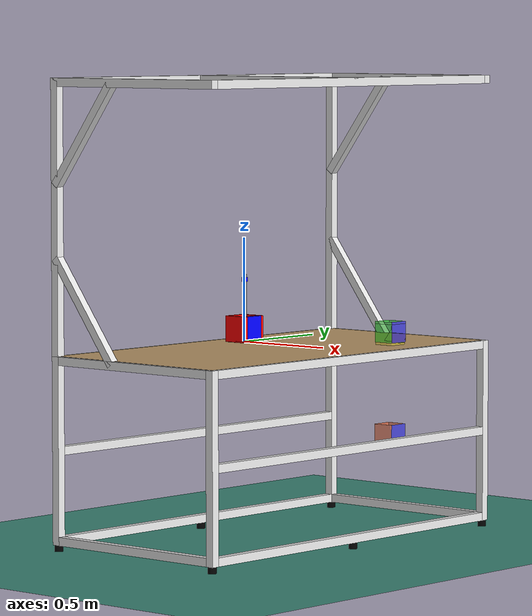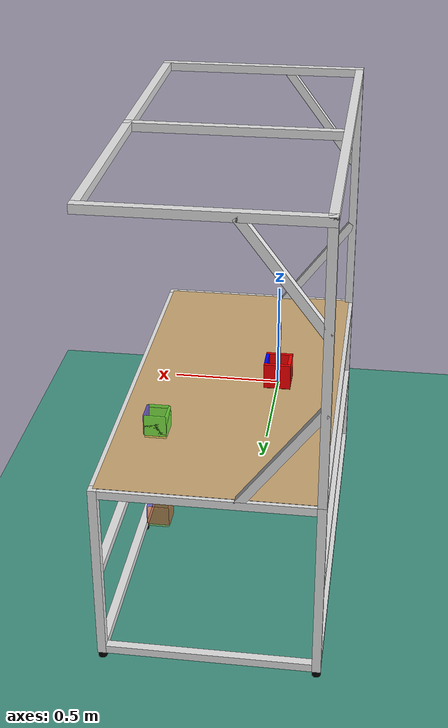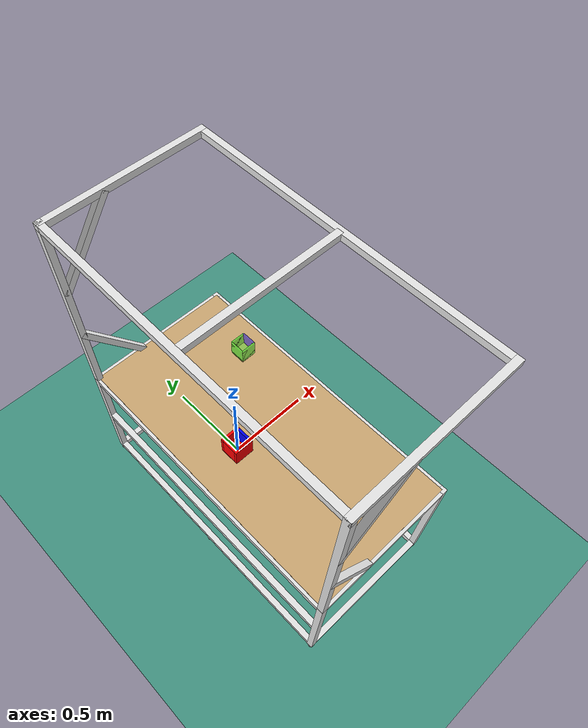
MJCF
<mujoco model="base_surrounding">
  <compiler angle="radian" discardvisual="false" />
  <option collision="all" cone="elliptic" gravity="0 0 -9.81" impratio="3" solver="Newton" timestep="0.002" tolerance="1e-10" />
  <size nconmax="2000" njmax="2000" />
  <asset>
    <texture builtin="gradient" height="32" rgb1="0.26 0.58 0.51" rgb2="0.26 0.58 0.51" type="skybox" width="32" />
  </asset>
  <visual>
    <map zfar="1000" znear="0.001" />
  </visual>
  <worldbody>
    <light castshadow="true" cutoff="100" diffuse="1 1 1" dir="-0 0 -1.3" directional="true" exponent="1" pos="0 0 1.3" specular=".1 .1 .1" />
    <body name="ground" pos="0 0 -0.94">
      <geom name="ground:geom1" rgba="0.26 0.58 0.51 1" size="0 0 1" type="plane" />
    </body>
    <body name="target_pos" pos="0.5 0.5 0.0">
      <site type="box" pos="0 0 0" rgba="0 1 0 0.3" size="0.05 0.05 0.01" />
      <site pos="0.05 0 0.0485" size="0.005 0.05 0.045" rgba="0 0 1 0.5" type="box"/>
      <site pos="0 0.05 0.0485" size="0.05 0.005 0.045" rgba="0 1 0 0.5" type="box"/>
      <site pos="-0.05 0 0.0485" size="0.005 0.05 0.045" rgba="0 1 0 0.5" type="box"/>
      <site pos="0 -0.05 0.0485" size="0.05 0.005 0.045" rgba="0 1 0 0.5" type="box"/>
    </body>

    <body name="replan_target_pos" pos="0.5 0.5 -0.01">
      <site type="box" pos="0 0 0" rgba="1 1 0 0.3" size="0.05 0.05 0.01" />
      <site pos="0.05 0 0.0485" size="0.005 0.05 0.045" rgba="0 0 1 0.5" type="box"/>
      <site pos="0 0.05 0.0485" size="0.05 0.005 0.045" rgba="0 1 0 0.5" type="box"/>
      <site pos="-0.05 0 0.0485" size="0.005 0.05 0.045" rgba="0 1 0 0.5" type="box"/>
      <site pos="0 -0.05 0.0485" size="0.05 0.005 0.045" rgba="0 1 0 0.5" type="box"/>
    </body>

    <body name="mocap_box" pos="0.5 0.5 -0.5">
      <site type="box" pos="0 0 0" rgba="1 1 0 0.3" size="0.05 0.05 0.01" />
      <site pos="0.05 0 0.0485" size="0.005 0.05 0.045" rgba="0 0 1 0.5" type="box"/>
      <site pos="0 0.05 0.0485" size="0.05 0.005 0.045" rgba="1 .3 0 0.5" type="box"/>
      <site pos="-0.05 0 0.0485" size="0.005 0.05 0.045" rgba="1 .3 0 0.5" type="box"/>
      <site pos="0 -0.05 0.0485" size="0.05 0.005 0.045" rgba="1 .3 0 0.5" type="box"/>
    </body>

  </worldbody>

 <contact>
 </contact>

  <include file="kit_lab_surrounding.xml" />
  <include file="push_box.xml" />
  <include file="finger.xml" />
</mujoco>

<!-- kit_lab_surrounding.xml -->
<mujoco model="PandaFrame">
    <worldbody>
        <body name="table_plane" pos="0.2 0 -0.02">
            <geom type="box" size="0.49 0.98 0.001" rgba="0.8 0.655 0.45 1" solimp="0.999 0.999 0.001"
                  solref="0.002 1"/>

            <body name="front_upper" pos="0.49 0 -0.02">
            <geom type="box" size="0.02 0.96 0.02" rgba=".9 .9 .9 1"/>
            </body>
            <body name="front_mid" pos="0.49 0 -0.445">
            <geom type="box" size="0.02 0.96 0.02" rgba=".9 .9 .9 1"/>
            </body>
            <body name="front_lower" pos="0.49 0 -0.87">
            <geom type="box" size="0.02 0.96 0.02" rgba=".9 .9 .9 1"/>
            </body>

            <body name="back_upper" pos="-0.49 0 -0.02">
            <geom type="box" size="0.02 0.96 0.02" rgba=".9 .9 .9 1"/>
            </body>
            <body name="back_mid" pos="-0.49 0 -0.445">
            <geom type="box" size="0.02 0.96 0.02" rgba=".9 .9 .9 1"/>
            </body>
            <body name="back_lower" pos="-0.49 0 -0.87">
            <geom type="box" size="0.02 0.96 0.02" rgba=".9 .9 .9 1"/>
            </body>

            <body name="vert_front_left" pos="0.49 0.98 -0.445">
            <geom type="box" size="0.02 0.02 0.445" rgba=".9 .9 .9 1"/>
            </body>
            <body name="vert_front_right" pos="0.49 -0.98 -0.445">
            <geom type="box" size="0.02 0.02 0.445" rgba=".9 .9 .9 1"/>
            </body>
            <body name="vert_back_left" pos="-0.49 0.98 -0.445">
            <geom type="box" size="0.02 0.02 0.445" rgba=".9 .9 .9 1"/>
            </body>
            <body name="vert_back_right" pos="-0.49 -0.98 -0.445">
            <geom type="box" size="0.02 0.02 0.445" rgba=".9 .9 .9 1"/>
            </body>

            <body name="side_upper_right" pos="0 -0.98 -0.02">
            <geom type="box" size="0.47 0.02 0.02" rgba=".9 .9 .9 1"/>
            </body>
            <body name="side_lower_right" pos="0 -0.98 -0.87">
            <geom type="box" size="0.47 0.02 0.02" rgba=".9 .9 .9 1"/>
            </body>

            <body name="side_upper_left" pos="0 0.98 -0.02">
            <geom type="box" size="0.47 0.02 0.02" rgba=".9 .9 .9 1"/>
            </body>
            <body name="side_lower_left" pos="0 0.98 -0.87">
            <geom type="box" size="0.47 0.02 0.02" rgba=".9 .9 .9 1"/>
            </body>

            <body name="foot_front_left" pos="0.49 0.98 -0.9">
            <geom type="cylinder" size="0.02 0.02 0.04" rgba="0 0 0 1"/>
            </body>
            <body name="foot_front_mid" pos="0.49 0 -0.9">
            <geom type="cylinder" size="0.02 0.02 0.04" rgba="0 0 0 1"/>
            </body>
            <body name="foot_front_right" pos="0.49 -0.98 -0.9">
            <geom type="cylinder" size="0.02 0.02 0.04" rgba="0 0 0 1"/>
            </body>

            <body name="foot_back_left" pos="-0.49 0.98 -0.9">
            <geom type="cylinder" size="0.02 0.02 0.04" rgba="0 0 0 1"/>
            </body>
            <body name="foot_back_mid" pos="-0.49 0 -0.9">
            <geom type="cylinder" size="0.02 0.02 0.04" rgba="0 0 0 1"/>
            </body>
            <body name="foot_back_right" pos="-0.49 -0.98 -0.9">
            <geom type="cylinder" size="0.02 0.02 0.04" rgba="0 0 0 1"/>
            </body>

            <body name="top_back_left" pos="-0.49 0.98 0.65">
            <geom type="box" size="0.02 0.02 0.65" rgba=".9 .9 .9 1"/>
            </body>
            <body name="top_back_right" pos="-0.49 -0.98 0.65">
            <geom type="box" size="0.02 0.02 0.65" rgba=".9 .9 .9 1"/>
            </body>
            <body name="top_front" pos="0.49 0 1.28">
            <geom type="box" size="0.02 0.96 0.02" rgba=".9 .9 .9 1"/>
            </body>
            <body name="top_back" pos="-0.49 0 1.28">
            <geom type="box" size="0.02 0.96 0.02" rgba=".9 .9 .9 1"/>
            </body>
            <body name="top_side_right" pos="0 -0.98 1.28">
            <geom type="box" size="0.51 0.02 0.02" rgba=".9 .9 .9 1"/>
            </body>
            <body name="top_side_mid" pos="0 0 1.28">
            <geom type="box" size="0.51 0.02 0.02" rgba=".9 .9 .9 1"/>
            </body>
            <body name="top_side_left" pos="0 0.98 1.28">
            <geom type="box" size="0.51 0.02 0.02" rgba=".9 .9 .9 1"/>
            </body>

            <body name="rot_lower_right" pos="-0.31 0.98 0.22" quat="0.2 0 0.1 0">
            <geom type="box" size="0.3 0.02 0.02" rgba=".9 .9 .9 1"/>
            </body>
            <body name="rot_lower_left" pos="-0.31 -0.98 0.22" quat="0.2 0 0.1 0">
            <geom type="box" size="0.3 0.02 0.02" rgba=".9 .9 .9 1"/>
            </body>
            <body name="rot_upper_right" pos="-0.31 0.98 1.04" quat="0.1 0 0.2 0">
            <geom type="box" size="0.3 0.02 0.02" rgba=".9 .9 .9 1"/>
            </body>
            <body name="rot_upper_left" pos="-0.31 -0.98 1.04" quat="0.1 0 0.2 0">
            <geom type="box" size="0.3 0.02 0.02" rgba=".9 .9 .9 1"/>
            </body>

            <body name="support_body" pos="0 0 -0.4" >
            <geom type="box" size="0.49 0.98 0.4" rgba="0 0 0 0" solimp="0.999  0.999 0.001" solref="0.002 1"/>
            </body>
        </body>
    </worldbody>
</mujoco>

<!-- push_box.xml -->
<mujoco model="push_box">
    <worldbody>
        <body name="box_0" pos="0 0 0" quat="1 0 0 0">
        <geom conaffinity="8" pos="0 0 0.0016" size="0.064 0.064 0.003" rgba="1 0 0 1.0" type="box" mass="0.0308" friction="0.4296 0.001 0.0001" priority="1"/> <!-- bot -->
            <geom conaffinity="8" pos="0.056 0 0.0624" size="0.008 0.048 0.0624" rgba="0 0 1 1.0" type="box" mass="0.10714"/>
            <geom conaffinity="8" pos="0 0.056 0.0624" size="0.064 0.008 0.0624" rgba="1 0 0 1.0" type="box" mass="0.14286"/>
            <geom conaffinity="8" pos="-0.056 0 0.0624" size="0.008 0.048 0.0624" rgba="1 0 0 1.0" type="box" mass="0.10714"/>
            <geom conaffinity="8" pos="0 -0.056 0.0624" size="0.064 0.008 0.0624" rgba="1 0 0 1.0" type="box" mass="0.14286"/>
            <joint name="box_x_joint" type="slide" pos="0 0 0" axis="1 0 0" />
            <joint name="box_y_joint" type="slide" pos="0 0 0" axis="0 1 0" />
            <joint name="box_z_joint" type="slide" pos="0 0 0" axis="0 0 1" />
            <joint name="box_roll_joint" type="hinge" pos="0 0 0" axis="1 0 0" limited="true" range="-.15 .15"/>
            <joint name="box_pitch_joint" type="hinge" pos="0 0 0" axis="0 1 0" limited="true" range="-.15 .15"/>
            <joint name="box_rot_joint" type="hinge" pos="0 0 0" axis="0 0 1" />
        </body>
    </worldbody>
</mujoco>

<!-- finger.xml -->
<mujocoinclude>
<worldbody>
    <body name="finger" pos="0 0 .1">
      <geom conaffinity="0" condim="4" contype="8" type="cylinder" size="0.01 0.15" pos="0 0 0.075" mass="1.0"/>
      <site name="finger_tip" type="box" rgba="0 0 1 1." size="0.01 0.01 0.01" pos="0 0 0.2"/>
      <joint name="finger_x_joint" type="slide" pos="0 0 0" axis="1 0 0" limited="true" range=".20 .60" damping="10"/>
      <joint name="finger_y_joint" type="slide" pos="0 0 0" axis="0 1 0" limited="true" range="-.37 0.37" damping="10"/>
    </body>

</worldbody>
  <actuator>
        <position kp="200" forcelimited="true" forcerange="-12 12" joint="finger_x_joint" name="finger_x_actuator" />
        <position kp="200"  forcelimited="true" forcerange="-12 12" joint="finger_y_joint" name="finger_y_actuator" />
  </actuator>
</mujocoinclude>
